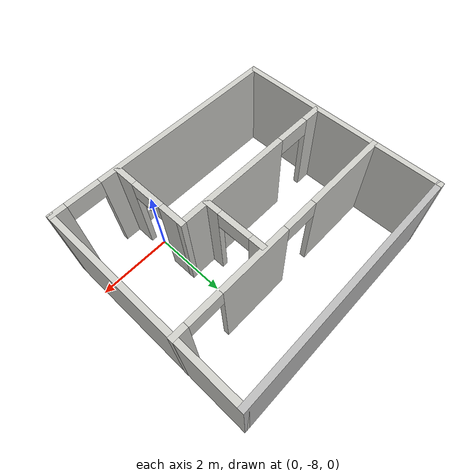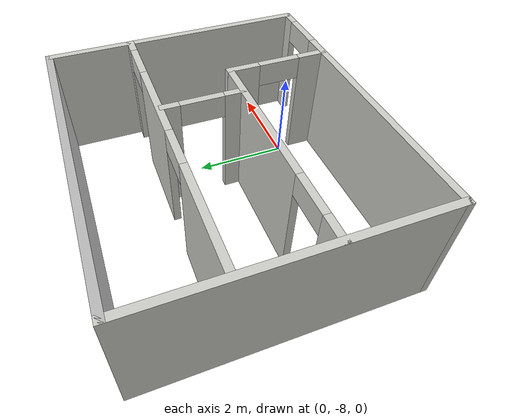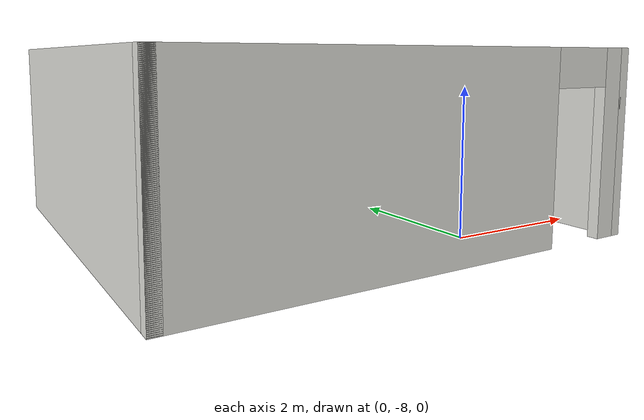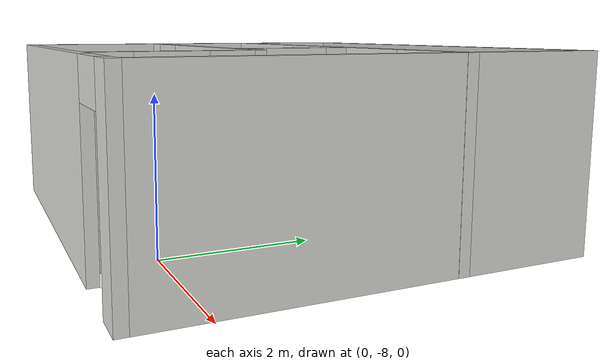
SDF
<?xml version='1.0'?>
<sdf version='1.7'>
  <model name='factory'>
    <pose>-1.28729 -4.47887 0 0 -0 0</pose>
    <link name='Wall_25'>
      <pose>-0.001225 -4.40387 0 0 -0 0</pose>
      <visual name='Wall_25_Visual_0'>
        <pose>-0.67288 0 1.25 0 -0 0</pose>
        <geometry>
          <box>
            <size>5.15424 0.15 2.5</size>
          </box>
        </geometry>
         <material>
          <script>
            <uri>file://media/materials/scripts/gazebo.material</uri>
            <name>Gazebo/CeilingTiled</name>
          </script>
          <ambient>1 1 1 1</ambient>
        </material>
        <meta>
          <layer>0</layer>
        </meta>
      </visual>
      <collision name='Wall_25_Collision_0'>
        <geometry>
          <box>
            <size>5.15424 0.15 2.5</size>
          </box>
        </geometry>
        <pose>-0.67288 0 1.25 0 -0 0</pose>
      </collision>
      <visual name='Wall_25_Visual_1'>
        <pose>3.02712 0 1.25 0 -0 0</pose>
        <geometry>
          <box>
            <size>0.44576 0.15 2.5</size>
          </box>
        </geometry>
        <material>
          <script>
            <uri>file://media/materials/scripts/gazebo.material</uri>
            <name>Gazebo/CeilingTiled</name>
          </script>
          <ambient>1 1 1 1</ambient>
        </material>
        <meta>
          <layer>0</layer>
        </meta>
      </visual>
      <collision name='Wall_25_Collision_1'>
        <geometry>
          <box>
            <size>0.44576 0.15 2.5</size>
          </box>
        </geometry>
        <pose>3.02712 0 1.25 0 -0 0</pose>
      </collision>
      <visual name='Wall_25_Visual_2'>
        <pose>2.35424 0 2.25 0 -0 0</pose>
        <geometry>
          <box>
            <size>0.9 0.15 0.5</size>
          </box>
        </geometry>
        <material>
          <script>
            <uri>file://media/materials/scripts/gazebo.material</uri>
            <name>Gazebo/CeilingTiled</name>
          </script>
          <ambient>1 1 1 1</ambient>
        </material>
        <meta>
          <layer>0</layer>
        </meta>
      </visual>
      <collision name='Wall_25_Collision_2'>
        <geometry>
          <box>
            <size>0.9 0.15 0.5</size>
          </box>
        </geometry>
        <pose>2.35424 0 2.25 0 -0 0</pose>
      </collision>
    </link>
    <link name='Wall_27'>
      <collision name='Wall_27_Collision'>
        <geometry>
          <box>
            <size>5.75 0.15 2.5</size>
          </box>
        </geometry>
        <pose>0 0 1.25 0 -0 0</pose>
      </collision>
      <visual name='Wall_27_Visual'>
        <pose>0 0 1.25 0 -0 0</pose>
        <geometry>
          <box>
            <size>5.75 0.15 2.5</size>
          </box>
        </geometry>
        <material>
          <script>
            <uri>file://media/materials/scripts/gazebo.material</uri>
            <name>Gazebo/CeilingTiled</name>
          </script>
          <ambient>1 1 1 1</ambient>
        </material>
        <meta>
          <layer>0</layer>
        </meta>
      </visual>
      <pose>-3.17623 -1.60387 0 0 -0 1.5708</pose>
    </link>
    <link name='Wall_28'>
      <collision name='Wall_28_Collision'>
        <geometry>
          <box>
            <size>6.5 0.15 2.5</size>
          </box>
        </geometry>
        <pose>0 0 1.25 0 -0 0</pose>
      </collision>
      <visual name='Wall_28_Visual'>
        <pose>0 0 1.25 0 -0 0</pose>
        <geometry>
          <box>
            <size>6.5 0.15 2.5</size>
          </box>
        </geometry>
        <material>
            <script>
              <uri>model://factory/materials/scripts</uri>
              <uri>model://factory/materials/textures</uri>
              <name>factory/WallLogo</name>
            </script>
          </material>
        <meta>
          <layer>0</layer>
        </meta>
      </visual>
      <pose>-0.001225 1.19613 0 0 -0 0</pose>
    </link>
    <link name='Wall_29'>
      <collision name='Wall_29_Collision'>
        <geometry>
          <box>
            <size>5.75 0.15 2.5</size>
          </box>
        </geometry>
        <pose>0 0 1.25 0 -0 0</pose>
      </collision>
      <visual name='Wall_29_Visual'>
        <pose>0 0 1.25 0 -0 0</pose>
        <geometry>
          <box>
            <size>5.75 0.15 2.5</size>
          </box>
        </geometry>
        <material>
          <script>
            <uri>file://media/materials/scripts/gazebo.material</uri>
            <name>Gazebo/CeilingTiled</name>
          </script>
          <ambient>1 1 1 1</ambient>
        </material>
        <meta>
          <layer>0</layer>
        </meta>
      </visual>
      <pose>3.17378 -1.60387 0 0 -0 -1.5708</pose>
    </link>
    <link name='Wall_36'>
      <pose>1.40632 -3.30591 0 0 -0 -1.57076</pose>
      <visual name='Wall_36_Visual_0'>
        <pose>-0.765691 0 1.25 0 -0 0</pose>
        <geometry>
          <box>
            <size>0.718618 0.15 2.5</size>
          </box>
        </geometry>
        <material>
          <script>
            <uri>file://media/materials/scripts/gazebo.material</uri>
            <name>Gazebo/CeilingTiled</name>
          </script>
          <ambient>1 1 1 1</ambient>
        </material>
        <meta>
          <layer>0</layer>
        </meta>
      </visual>
      <collision name='Wall_36_Collision_0'>
        <geometry>
          <box>
            <size>0.718618 0.15 2.5</size>
          </box>
        </geometry>
        <pose>-0.765691 0 1.25 0 -0 0</pose>
      </collision>
      <visual name='Wall_36_Visual_1'>
        <pose>0.809309 0 1.25 0 -0 0</pose>
        <geometry>
          <box>
            <size>0.631382 0.15 2.5</size>
          </box>
        </geometry>
        <material>
          <script>
            <uri>file://media/materials/scripts/gazebo.material</uri>
            <name>Gazebo/CeilingTiled</name>
          </script>
          <ambient>1 1 1 1</ambient>
        </material>
        <meta>
          <layer>0</layer>
        </meta>
      </visual>
      <collision name='Wall_36_Collision_1'>
        <geometry>
          <box>
            <size>0.631382 0.15 2.5</size>
          </box>
        </geometry>
        <pose>0.809309 0 1.25 0 -0 0</pose>
      </collision>
      <visual name='Wall_36_Visual_2'>
        <pose>0.043618 0 2.25 0 -0 0</pose>
        <geometry>
          <box>
            <size>0.9 0.15 0.5</size>
          </box>
        </geometry>
        <material>
          <script>
            <uri>file://media/materials/scripts/gazebo.material</uri>
            <name>Gazebo/CeilingTiled</name>
          </script>
          <ambient>1 1 1 1</ambient>
        </material>
        <meta>
          <layer>0</layer>
        </meta>
      </visual>
      <collision name='Wall_36_Collision_2'>
        <geometry>
          <box>
            <size>0.9 0.15 0.5</size>
          </box>
        </geometry>
        <pose>0.043618 0 2.25 0 -0 0</pose>
      </collision>
    </link>
    <link name='Wall_38'>
      <pose>-0.883713 -2.25613 0 0 -0 3.14159</pose>
      <visual name='Wall_38_Visual_0'>
        <pose>-0.741035 0 1.25 0 -0 0</pose>
        <geometry>
          <box>
            <size>3.24793 0.15 2.5</size>
          </box>
        </geometry>
        <material>
          <script>
            <uri>file://media/materials/scripts/gazebo.material</uri>
            <name>Gazebo/CeilingTiled</name>
          </script>
          <ambient>1 1 1 1</ambient>
        </material>
        <meta>
          <layer>0</layer>
        </meta>
      </visual>
      <collision name='Wall_38_Collision_0'>
        <geometry>
          <box>
            <size>3.24793 0.15 2.5</size>
          </box>
        </geometry>
        <pose>-0.741035 0 1.25 0 -0 0</pose>
      </collision>
      <visual name='Wall_38_Visual_1'>
        <pose>2.07396 0 1.25 0 -0 0</pose>
        <geometry>
          <box>
            <size>0.582069 0.15 2.5</size>
          </box>
        </geometry>
        <material>
          <script>
            <uri>file://media/materials/scripts/gazebo.material</uri>
            <name>Gazebo/CeilingTiled</name>
          </script>
          <ambient>1 1 1 1</ambient>
        </material>
        <meta>
          <layer>0</layer>
        </meta>
      </visual>
      <collision name='Wall_38_Collision_1'>
        <geometry>
          <box>
            <size>0.582069 0.15 2.5</size>
          </box>
        </geometry>
        <pose>2.07396 0 1.25 0 -0 0</pose>
      </collision>
      <visual name='Wall_38_Visual_2'>
        <pose>1.33293 0 2.25 0 -0 0</pose>
        <geometry>
          <box>
            <size>0.9 0.15 0.5</size>
          </box>
        </geometry>
        <material>
          <script>
            <uri>file://media/materials/scripts/gazebo.material</uri>
            <name>Gazebo/CeilingTiled</name>
          </script>
          <ambient>1 1 1 1</ambient>
        </material>
        <meta>
          <layer>0</layer>
        </meta>
      </visual>
      <collision name='Wall_38_Collision_2'>
        <geometry>
          <box>
            <size>0.9 0.15 0.5</size>
          </box>
        </geometry>
        <pose>1.33293 0 2.25 0 -0 0</pose>
      </collision>
    </link>
    <link name='Wall_42'>
      <pose>0.002225 -0.560579 0 0 -0 3.14159</pose>
      <visual name='Wall_42_Visual_0'>
        <pose>-3.04771 0 1.25 0 -0 0</pose>
        <geometry>
          <box>
            <size>0.402583 0.15 2.5</size>
          </box>
        </geometry>
        <material>
          <script>
            <uri>file://media/materials/scripts/gazebo.material</uri>
            <name>Gazebo/CeilingTiled</name>
          </script>
          <ambient>1 1 1 1</ambient>
        </material>
        <meta>
          <layer>0</layer>
        </meta>
      </visual>
      <collision name='Wall_42_Collision_0'>
        <geometry>
          <box>
            <size>0.402583 0.15 2.5</size>
          </box>
        </geometry>
        <pose>-3.04771 0 1.25 0 -0 0</pose>
      </collision>
      <visual name='Wall_42_Visual_1'>
        <pose>-0.972022 0 1.25 0 -0 0</pose>
        <geometry>
          <box>
            <size>1.94879 0.15 2.5</size>
          </box>
        </geometry>
        <material>
          <script>
            <uri>file://media/materials/scripts/gazebo.material</uri>
            <name>Gazebo/CeilingTiled</name>
          </script>
          <ambient>1 1 1 1</ambient>
        </material>
        <meta>
          <layer>0</layer>
        </meta>
      </visual>
      <collision name='Wall_42_Collision_1'>
        <geometry>
          <box>
            <size>1.94879 0.15 2.5</size>
          </box>
        </geometry>
        <pose>-0.972022 0 1.25 0 -0 0</pose>
      </collision>
      <visual name='Wall_42_Visual_2'>
        <pose>2.07569 0 1.25 0 -0 0</pose>
        <geometry>
          <box>
            <size>2.34663 0.15 2.5</size>
          </box>
        </geometry>
        <material>
          <script>
            <uri>file://media/materials/scripts/gazebo.material</uri>
            <name>Gazebo/CeilingTiled</name>
          </script>
          <ambient>1 1 1 1</ambient>
        </material>
        <meta>
          <layer>0</layer>
        </meta>
      </visual>
      <collision name='Wall_42_Collision_2'>
        <geometry>
          <box>
            <size>2.34663 0.15 2.5</size>
          </box>
        </geometry>
        <pose>2.07569 0 1.25 0 -0 0</pose>
      </collision>
      <visual name='Wall_42_Visual_3'>
        <pose>-2.39642 0 2.25 0 -0 0</pose>
        <geometry>
          <box>
            <size>0.9 0.15 0.5</size>
          </box>
        </geometry>
        <material>
          <script>
            <uri>file://media/materials/scripts/gazebo.material</uri>
            <name>Gazebo/CeilingTiled</name>
          </script>
          <ambient>1 1 1 1</ambient>
        </material>
        <meta>
          <layer>0</layer>
        </meta>
      </visual>
      <collision name='Wall_42_Collision_3'>
        <geometry>
          <box>
            <size>0.9 0.15 0.5</size>
          </box>
        </geometry>
        <pose>-2.39642 0 2.25 0 -0 0</pose>
      </collision>
      <visual name='Wall_42_Visual_4'>
        <pose>0.452373 0 2.25 0 -0 0</pose>
        <geometry>
          <box>
            <size>0.9 0.15 0.5</size>
          </box>
        </geometry>
        <material>
          <script>
            <uri>file://media/materials/scripts/gazebo.material</uri>
            <name>Gazebo/CeilingTiled</name>
          </script>
          <ambient>1 1 1 1</ambient>
        </material>
        <meta>
          <layer>0</layer>
        </meta>
      </visual>
      <collision name='Wall_42_Collision_4'>
        <geometry>
          <box>
            <size>0.9 0.15 0.5</size>
          </box>
        </geometry>
        <pose>0.452373 0 2.25 0 -0 0</pose>
      </collision>
    </link>
    <link name='Wall_44'>
      <pose>0.668396 -1.43097 0 0 -0 -1.5708</pose>
      <visual name='Wall_44_Visual_0'>
        <pose>-0.676577 0 1.25 0 -0 0</pose>
        <geometry>
          <box>
            <size>0.396846 0.15 2.5</size>
          </box>
        </geometry>
        <material>
          <script>
            <uri>file://media/materials/scripts/gazebo.material</uri>
            <name>Gazebo/CeilingTiled</name>
          </script>
          <ambient>1 1 1 1</ambient>
        </material>
        <meta>
          <layer>0</layer>
        </meta>
      </visual>
      <collision name='Wall_44_Collision_0'>
        <geometry>
          <box>
            <size>0.396846 0.15 2.5</size>
          </box>
        </geometry>
        <pose>-0.676577 0 1.25 0 -0 0</pose>
      </collision>
      <visual name='Wall_44_Visual_1'>
        <pose>0.648423 0 1.25 0 -0 0</pose>
        <geometry>
          <box>
            <size>0.453154 0.15 2.5</size>
          </box>
        </geometry>
        <material>
          <script>
            <uri>file://media/materials/scripts/gazebo.material</uri>
            <name>Gazebo/CeilingTiled</name>
          </script>
          <ambient>1 1 1 1</ambient>
        </material>
        <meta>
          <layer>0</layer>
        </meta>
      </visual>
      <collision name='Wall_44_Collision_1'>
        <geometry>
          <box>
            <size>0.453154 0.15 2.5</size>
          </box>
        </geometry>
        <pose>0.648423 0 1.25 0 -0 0</pose>
      </collision>
      <visual name='Wall_44_Visual_2'>
        <pose>-0.028154 0 2.25 0 -0 0</pose>
        <geometry>
          <box>
            <size>0.9 0.15 0.5</size>
          </box>
        </geometry>
        <material>
          <script>
            <uri>file://media/materials/scripts/gazebo.material</uri>
            <name>Gazebo/CeilingTiled</name>
          </script>
          <ambient>1 1 1 1</ambient>
        </material>
        <meta>
          <layer>0</layer>
        </meta>
      </visual>
      <collision name='Wall_44_Collision_2'>
        <geometry>
          <box>
            <size>0.9 0.15 0.5</size>
          </box>
        </geometry>
        <pose>-0.028154 0 2.25 0 -0 0</pose>
      </collision>
    </link>
    <static>1</static>
  </model>
</sdf>
